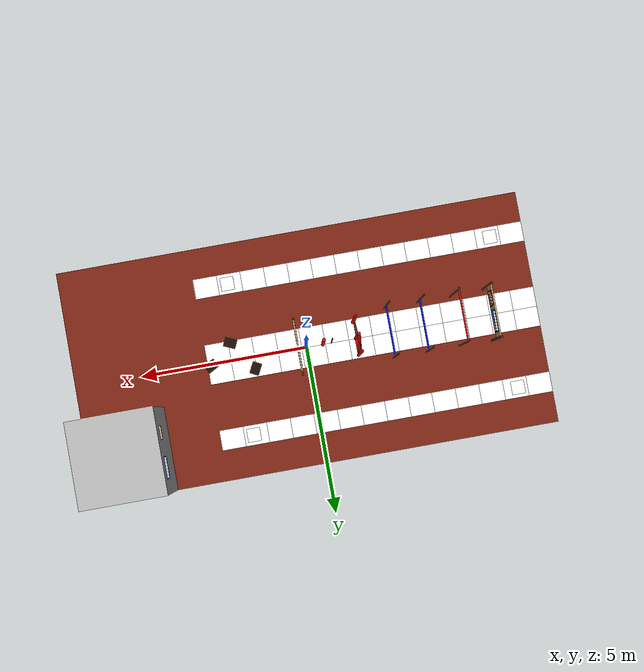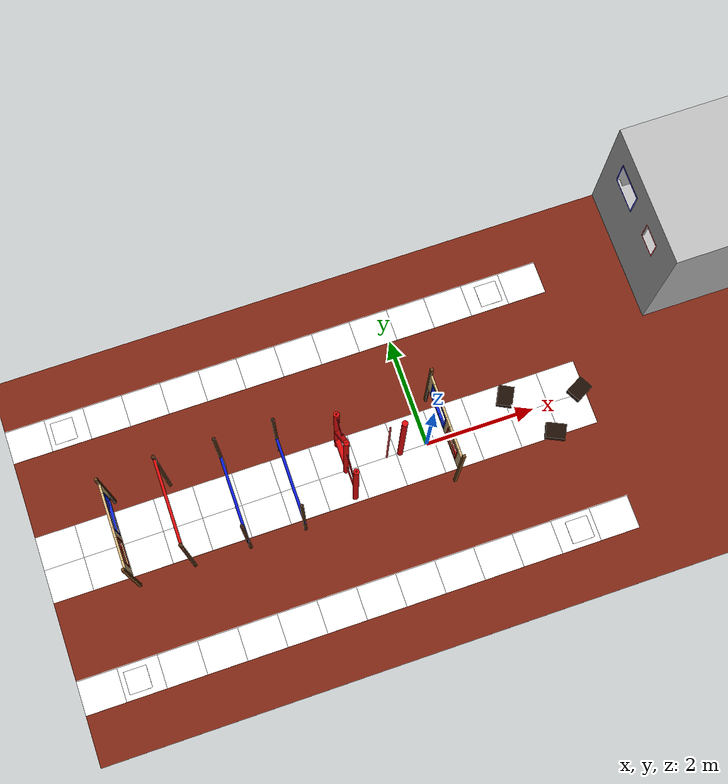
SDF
<sdf version="1.9">
 <world name="imav_world">
  <physics name="1ms" type="ignore">
   <max_step_size>0.001</max_step_size>
   <real_time_factor>1.0</real_time_factor>
  </physics>
  <plugin filename="gz-sim-physics-system" name="gz::sim::systems::Physics"/>
  <plugin filename="gz-sim-sensors-system" name="gz::sim::systems::Sensors">
   <render_engine>ogre2</render_engine>
  </plugin>
  <plugin filename="gz-sim-user-commands-system" name="gz::sim::systems::UserCommands"/>
  <plugin filename="gz-sim-scene-broadcaster-system" name="gz::sim::systems::SceneBroadcaster"/>
  <plugin filename="gz-sim-imu-system" name="gz::sim::systems::Imu"/>
  <plugin filename="gz-sim-pose-publisher-system" name="gz::sim::systems::PosePublisher">
   <publish_model_pose>true</publish_model_pose>
   <publish_nested_model_pose>false</publish_nested_model_pose>
   <update_frequency>30</update_frequency>
  </plugin>
  <light type="point" name="ceiling_light_1">
   <pose>-5 -5 11.5 0 0 0</pose>
   <diffuse>1.0 1.0 1.0 1</diffuse>
   <specular>0.3 0.3 0.3 1</specular>
   <attenuation>
    <range>30</range>
    <constant>0.5</constant>
    <linear>0.02</linear>
    <quadratic>0.003</quadratic>
   </attenuation>
  </light>
  <light type="point" name="ceiling_light_2">
   <pose>-5 5 11.5 0 0 0</pose>
   <diffuse>1.0 1.0 1.0 1</diffuse>
   <specular>0.3 0.3 0.3 1</specular>
   <attenuation>
    <range>30</range>
    <constant>0.5</constant>
    <linear>0.02</linear>
    <quadratic>0.003</quadratic>
   </attenuation>
  </light>
  <light type="point" name="ceiling_light_3">
   <pose>5 -5 11.5 0 0 0</pose>
   <diffuse>1.0 1.0 1.0 1</diffuse>
   <specular>0.3 0.3 0.3 1</specular>
   <attenuation>
    <range>30</range>
    <constant>0.5</constant>
    <linear>0.02</linear>
    <quadratic>0.003</quadratic>
   </attenuation>
  </light>
  <light type="point" name="ceiling_light_4">
   <pose>5 5 11.5 0 0 0</pose>
   <diffuse>1.0 1.0 1.0 1</diffuse>
   <specular>0.3 0.3 0.3 1</specular>
   <attenuation>
    <range>30</range>
    <constant>0.5</constant>
    <linear>0.02</linear>
    <quadratic>0.003</quadratic>
   </attenuation>
  </light>
  <include><uri>model://imav</uri><name>imav</name></include>
  <model name="front_camera">
   <static>false</static>
   <pose relative_to="iris::iris_with_standoffs::base_link">0.18 0 -0.02 0 0 0</pose>
   <link name="link">
    <inertial>
     <mass>0.07</mass>
     <inertia><ixx>1e-5</ixx><ixy>0</ixy><ixz>0</ixz><iyy>1e-5</iyy><iyz>0</iyz><izz>1e-5</izz></inertia>
    </inertial>
    <visual name="visual">
     <geometry><box><size>0.025 0.09 0.025</size></box></geometry>
     <material><ambient>0.5 0.5 0.5 1</ambient><diffuse>0.6 0.6 0.6 1</diffuse></material>
    </visual>
    <sensor name="front_rgbd" type="rgbd_camera">
     <always_on>true</always_on>
     <update_rate>15</update_rate>
     <topic>/front_camera</topic>
     <camera>
      <horizontal_fov>1.2043</horizontal_fov>
      <image><width>640</width><height>480</height><format>R8G8B8</format></image>
      <clip><near>0.1</near><far>10.0</far></clip>
      <depth_camera><clip><near>0.1</near><far>10.0</far></clip></depth_camera>
     </camera>
    </sensor>
   </link>
  </model>
  <joint name="front_camera_joint" type="fixed">
   <parent>iris::iris_with_standoffs::base_link</parent>
   <child>front_camera::link</child>
  </joint>
  <model name="down_camera">
   <static>false</static>
   <pose relative_to="iris::iris_with_standoffs::base_link">0 0 -0.04 0 1.5708 0</pose>
   <link name="link">
    <inertial>
     <mass>0.03</mass>
     <inertia><ixx>1e-6</ixx><ixy>0</ixy><ixz>0</ixz><iyy>1e-6</iyy><iyz>0</iyz><izz>1e-6</izz></inertia>
    </inertial>
    <visual name="visual">
     <geometry><box><size>0.02 0.02 0.015</size></box></geometry>
     <material><ambient>0.2 0.2 0.2 1</ambient><diffuse>0.3 0.3 0.3 1</diffuse></material>
    </visual>
    <sensor name="down_rgb" type="camera">
     <always_on>true</always_on>
     <update_rate>15</update_rate>
     <topic>/down_camera</topic>
     <camera>
      <horizontal_fov>1.5009</horizontal_fov>
      <image><width>640</width><height>480</height><format>R8G8B8</format></image>
      <clip><near>0.1</near><far>50.0</far></clip>
     </camera>
    </sensor>
   </link>
  </model>
  <joint name="down_camera_joint" type="fixed">
   <parent>iris::iris_with_standoffs::base_link</parent>
   <child>down_camera::link</child>
  </joint>
  <model name="lidar_rangefinder">
   <static>false</static>
   <pose relative_to="iris::iris_with_standoffs::base_link">0 0 -0.05 0 1.5708 0</pose>
   <link name="link">
    <inertial>
     <mass>0.03</mass>
     <inertia><ixx>1e-6</ixx><ixy>0</ixy><ixz>0</ixz><iyy>1e-6</iyy><iyz>0</iyz><izz>1e-6</izz></inertia>
    </inertial>
    <sensor name="lidar_rangefinder" type="gpu_lidar">
     <always_on>true</always_on>
     <update_rate>50</update_rate>
     <topic>/lidar/range</topic>
     <ray>
      <scan>
       <horizontal>
        <samples>1</samples>
        <resolution>1</resolution>
        <min_angle>0</min_angle>
        <max_angle>0</max_angle>
       </horizontal>
      </scan>
      <range><min>0.1</min><max>40.0</max><resolution>0.01</resolution></range>
     </ray>
    </sensor>
   </link>
  </model>
  <joint name="lidar_joint" type="fixed">
   <parent>iris::iris_with_standoffs::base_link</parent>
   <child>lidar_rangefinder::link</child>
  </joint>
 </world>
</sdf>

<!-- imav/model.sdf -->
<sdf version="1.9">
  <model name="imav">
    <static>true</static>

    <!-- Mesh visual (rulebook scenery). Collision is the floor box + overlays so
         missing all.stl cannot leave the arena without physics. -->
    <link name="base_link">
      <collision name="floor_collision">
        <pose>0 0 -0.05 0 0 0</pose>
        <geometry>
          <box>
            <size>14 7 0.1</size>
          </box>
        </geometry>
      </collision>
      <visual name="visual">
        <geometry>
          <mesh>
            <uri>model://imav/meshes/all.dae</uri>
            <scale>1 1 1</scale>
          </mesh>
        </geometry>
      </visual>
    </link>

    <link name="floor_red">
      <pose>0 0 -0.002 0 0 0</pose>
      <visual name="visual">
        <geometry><box><size>14 7 0.004</size></box></geometry>
          <material>
            <ambient>0.7 0.08 0.05 1</ambient>
            <diffuse>0.7 0.08 0.05 1</diffuse>
            <specular>0.15 0.15 0.15 1</specular>
          </material>
      </visual>
    </link>
    <!-- Fig.8 wallpaper: tiled quads (not one stretched 10 m box). -->
    <link name="wallpaper">

      <visual name="wp_c0_0">
        <pose>-6.642857 0.30 0.004 0 0 0</pose>
        <geometry><box><size>0.714286 0.6 0.006</size></box></geometry>
          <material>
            <ambient>1 1 1 1</ambient>
            <diffuse>1 1 1 1</diffuse>
            <pbr>
              <metal>
                <albedo_map>model://imav/meshes/wallpaper_image.jpg</albedo_map>
              </metal>
            </pbr>
          </material>
      </visual>

      <visual name="wp_c0_1">
        <pose>-5.928571 0.30 0.004 0 0 0</pose>
        <geometry><box><size>0.714286 0.6 0.006</size></box></geometry>
          <material>
            <ambient>1 1 1 1</ambient>
            <diffuse>1 1 1 1</diffuse>
            <pbr>
              <metal>
                <albedo_map>model://imav/meshes/wallpaper_image.jpg</albedo_map>
              </metal>
            </pbr>
          </material>
      </visual>

      <visual name="wp_c0_2">
        <pose>-5.214286 0.30 0.004 0 0 0</pose>
        <geometry><box><size>0.714286 0.6 0.006</size></box></geometry>
          <material>
            <ambient>1 1 1 1</ambient>
            <diffuse>1 1 1 1</diffuse>
            <pbr>
              <metal>
                <albedo_map>model://imav/meshes/wallpaper_image.jpg</albedo_map>
              </metal>
            </pbr>
          </material>
      </visual>

      <visual name="wp_c0_3">
        <pose>-4.500000 0.30 0.004 0 0 0</pose>
        <geometry><box><size>0.714286 0.6 0.006</size></box></geometry>
          <material>
            <ambient>1 1 1 1</ambient>
            <diffuse>1 1 1 1</diffuse>
            <pbr>
              <metal>
                <albedo_map>model://imav/meshes/wallpaper_image.jpg</albedo_map>
              </metal>
            </pbr>
          </material>
      </visual>

      <visual name="wp_c0_4">
        <pose>-3.785714 0.30 0.004 0 0 0</pose>
        <geometry><box><size>0.714286 0.6 0.006</size></box></geometry>
          <material>
            <ambient>1 1 1 1</ambient>
            <diffuse>1 1 1 1</diffuse>
            <pbr>
              <metal>
                <albedo_map>model://imav/meshes/wallpaper_image.jpg</albedo_map>
              </metal>
            </pbr>
          </material>
      </visual>

      <visual name="wp_c0_5">
        <pose>-3.071429 0.30 0.004 0 0 0</pose>
        <geometry><box><size>0.714286 0.6 0.006</size></box></geometry>
          <material>
            <ambient>1 1 1 1</ambient>
            <diffuse>1 1 1 1</diffuse>
            <pbr>
              <metal>
                <albedo_map>model://imav/meshes/wallpaper_image.jpg</albedo_map>
              </metal>
            </pbr>
          </material>
      </visual>

      <visual name="wp_c0_6">
        <pose>-2.357143 0.30 0.004 0 0 0</pose>
        <geometry><box><size>0.714286 0.6 0.006</size></box></geometry>
          <material>
            <ambient>1 1 1 1</ambient>
            <diffuse>1 1 1 1</diffuse>
            <pbr>
              <metal>
                <albedo_map>model://imav/meshes/wallpaper_image.jpg</albedo_map>
              </metal>
            </pbr>
          </material>
      </visual>

      <visual name="wp_c0_7">
        <pose>-1.642857 0.30 0.004 0 0 0</pose>
        <geometry><box><size>0.714286 0.6 0.006</size></box></geometry>
          <material>
            <ambient>1 1 1 1</ambient>
            <diffuse>1 1 1 1</diffuse>
            <pbr>
              <metal>
                <albedo_map>model://imav/meshes/wallpaper_image.jpg</albedo_map>
              </metal>
            </pbr>
          </material>
      </visual>

      <visual name="wp_c0_8">
        <pose>-0.928571 0.30 0.004 0 0 0</pose>
        <geometry><box><size>0.714286 0.6 0.006</size></box></geometry>
          <material>
            <ambient>1 1 1 1</ambient>
            <diffuse>1 1 1 1</diffuse>
            <pbr>
              <metal>
                <albedo_map>model://imav/meshes/wallpaper_image.jpg</albedo_map>
              </metal>
            </pbr>
          </material>
      </visual>

      <visual name="wp_c0_9">
        <pose>-0.214286 0.30 0.004 0 0 0</pose>
        <geometry><box><size>0.714286 0.6 0.006</size></box></geometry>
          <material>
            <ambient>1 1 1 1</ambient>
            <diffuse>1 1 1 1</diffuse>
            <pbr>
              <metal>
                <albedo_map>model://imav/meshes/wallpaper_image.jpg</albedo_map>
              </metal>
            </pbr>
          </material>
      </visual>

      <visual name="wp_c0_10">
        <pose>0.500000 0.30 0.004 0 0 0</pose>
        <geometry><box><size>0.714286 0.6 0.006</size></box></geometry>
          <material>
            <ambient>1 1 1 1</ambient>
            <diffuse>1 1 1 1</diffuse>
            <pbr>
              <metal>
                <albedo_map>model://imav/meshes/wallpaper_image.jpg</albedo_map>
              </metal>
            </pbr>
          </material>
      </visual>

      <visual name="wp_c0_11">
        <pose>1.214286 0.30 0.004 0 0 0</pose>
        <geometry><box><size>0.714286 0.6 0.006</size></box></geometry>
          <material>
            <ambient>1 1 1 1</ambient>
            <diffuse>1 1 1 1</diffuse>
            <pbr>
              <metal>
                <albedo_map>model://imav/meshes/wallpaper_image.jpg</albedo_map>
              </metal>
            </pbr>
          </material>
      </visual>

      <visual name="wp_c0_12">
        <pose>1.928571 0.30 0.004 0 0 0</pose>
        <geometry><box><size>0.714286 0.6 0.006</size></box></geometry>
          <material>
            <ambient>1 1 1 1</ambient>
            <diffuse>1 1 1 1</diffuse>
            <pbr>
              <metal>
                <albedo_map>model://imav/meshes/wallpaper_image.jpg</albedo_map>
              </metal>
            </pbr>
          </material>
      </visual>

      <visual name="wp_c0_13">
        <pose>2.642857 0.30 0.004 0 0 0</pose>
        <geometry><box><size>0.714286 0.6 0.006</size></box></geometry>
          <material>
            <ambient>1 1 1 1</ambient>
            <diffuse>1 1 1 1</diffuse>
            <pbr>
              <metal>
                <albedo_map>model://imav/meshes/wallpaper_image.jpg</albedo_map>
              </metal>
            </pbr>
          </material>
      </visual>

      <visual name="wp_c1_0">
        <pose>-6.642857 -0.30 0.004 0 0 0</pose>
        <geometry><box><size>0.714286 0.6 0.006</size></box></geometry>
          <material>
            <ambient>1 1 1 1</ambient>
            <diffuse>1 1 1 1</diffuse>
            <pbr>
              <metal>
                <albedo_map>model://imav/meshes/wallpaper_image.jpg</albedo_map>
              </metal>
            </pbr>
          </material>
      </visual>

      <visual name="wp_c1_1">
        <pose>-5.928571 -0.30 0.004 0 0 0</pose>
        <geometry><box><size>0.714286 0.6 0.006</size></box></geometry>
          <material>
            <ambient>1 1 1 1</ambient>
            <diffuse>1 1 1 1</diffuse>
            <pbr>
              <metal>
                <albedo_map>model://imav/meshes/wallpaper_image.jpg</albedo_map>
              </metal>
            </pbr>
          </material>
      </visual>

      <visual name="wp_c1_2">
        <pose>-5.214286 -0.30 0.004 0 0 0</pose>
        <geometry><box><size>0.714286 0.6 0.006</size></box></geometry>
          <material>
            <ambient>1 1 1 1</ambient>
            <diffuse>1 1 1 1</diffuse>
            <pbr>
              <metal>
                <albedo_map>model://imav/meshes/wallpaper_image.jpg</albedo_map>
              </metal>
            </pbr>
          </material>
      </visual>

      <visual name="wp_c1_3">
        <pose>-4.500000 -0.30 0.004 0 0 0</pose>
        <geometry><box><size>0.714286 0.6 0.006</size></box></geometry>
          <material>
            <ambient>1 1 1 1</ambient>
            <diffuse>1 1 1 1</diffuse>
            <pbr>
              <metal>
                <albedo_map>model://imav/meshes/wallpaper_image.jpg</albedo_map>
              </metal>
            </pbr>
          </material>
      </visual>

      <visual name="wp_c1_4">
        <pose>-3.785714 -0.30 0.004 0 0 0</pose>
        <geometry><box><size>0.714286 0.6 0.006</size></box></geometry>
          <material>
            <ambient>1 1 1 1</ambient>
            <diffuse>1 1 1 1</diffuse>
            <pbr>
              <metal>
                <albedo_map>model://imav/meshes/wallpaper_image.jpg</albedo_map>
              </metal>
            </pbr>
          </material>
      </visual>

      <visual name="wp_c1_5">
        <pose>-3.071429 -0.30 0.004 0 0 0</pose>
        <geometry><box><size>0.714286 0.6 0.006</size></box></geometry>
          <material>
            <ambient>1 1 1 1</ambient>
            <diffuse>1 1 1 1</diffuse>
            <pbr>
              <metal>
                <albedo_map>model://imav/meshes/wallpaper_image.jpg</albedo_map>
              </metal>
            </pbr>
          </material>
      </visual>

      <visual name="wp_c1_6">
        <pose>-2.357143 -0.30 0.004 0 0 0</pose>
        <geometry><box><size>0.714286 0.6 0.006</size></box></geometry>
          <material>
            <ambient>1 1 1 1</ambient>
            <diffuse>1 1 1 1</diffuse>
            <pbr>
              <metal>
                <albedo_map>model://imav/meshes/wallpaper_image.jpg</albedo_map>
              </metal>
            </pbr>
          </material>
      </visual>

      <visual name="wp_c1_7">
        <pose>-1.642857 -0.30 0.004 0 0 0</pose>
        <geometry><box><size>0.714286 0.6 0.006</size></box></geometry>
          <material>
            <ambient>1 1 1 1</ambient>
            <diffuse>1 1 1 1</diffuse>
            <pbr>
              <metal>
                <albedo_map>model://imav/meshes/wallpaper_image.jpg</albedo_map>
              </metal>
            </pbr>
          </material>
      </visual>

      <visual name="wp_c1_8">
        <pose>-0.928571 -0.30 0.004 0 0 0</pose>
        <geometry><box><size>0.714286 0.6 0.006</size></box></geometry>
          <material>
            <ambient>1 1 1 1</ambient>
            <diffuse>1 1 1 1</diffuse>
            <pbr>
              <metal>
                <albedo_map>model://imav/meshes/wallpaper_image.jpg</albedo_map>
              </metal>
            </pbr>
          </material>
      </visual>

      <visual name="wp_c1_9">
        <pose>-0.214286 -0.30 0.004 0 0 0</pose>
        <geometry><box><size>0.714286 0.6 0.006</size></box></geometry>
          <material>
            <ambient>1 1 1 1</ambient>
            <diffuse>1 1 1 1</diffuse>
            <pbr>
              <metal>
                <albedo_map>model://imav/meshes/wallpaper_image.jpg</albedo_map>
              </metal>
            </pbr>
          </material>
      </visual>

      <visual name="wp_c1_10">
        <pose>0.500000 -0.30 0.004 0 0 0</pose>
        <geometry><box><size>0.714286 0.6 0.006</size></box></geometry>
          <material>
            <ambient>1 1 1 1</ambient>
            <diffuse>1 1 1 1</diffuse>
            <pbr>
              <metal>
                <albedo_map>model://imav/meshes/wallpaper_image.jpg</albedo_map>
              </metal>
            </pbr>
          </material>
      </visual>

      <visual name="wp_c1_11">
        <pose>1.214286 -0.30 0.004 0 0 0</pose>
        <geometry><box><size>0.714286 0.6 0.006</size></box></geometry>
          <material>
            <ambient>1 1 1 1</ambient>
            <diffuse>1 1 1 1</diffuse>
            <pbr>
              <metal>
                <albedo_map>model://imav/meshes/wallpaper_image.jpg</albedo_map>
              </metal>
            </pbr>
          </material>
      </visual>

      <visual name="wp_c1_12">
        <pose>1.928571 -0.30 0.004 0 0 0</pose>
        <geometry><box><size>0.714286 0.6 0.006</size></box></geometry>
          <material>
            <ambient>1 1 1 1</ambient>
            <diffuse>1 1 1 1</diffuse>
            <pbr>
              <metal>
                <albedo_map>model://imav/meshes/wallpaper_image.jpg</albedo_map>
              </metal>
            </pbr>
          </material>
      </visual>

      <visual name="wp_c1_13">
        <pose>2.642857 -0.30 0.004 0 0 0</pose>
        <geometry><box><size>0.714286 0.6 0.006</size></box></geometry>
          <material>
            <ambient>1 1 1 1</ambient>
            <diffuse>1 1 1 1</diffuse>
            <pbr>
              <metal>
                <albedo_map>model://imav/meshes/wallpaper_image.jpg</albedo_map>
              </metal>
            </pbr>
          </material>
      </visual>

      <visual name="wp_l_0">
        <pose>-6.642857 2.29 0.004 0 0 0</pose>
        <geometry><box><size>0.714286 0.6 0.006</size></box></geometry>
          <material>
            <ambient>1 1 1 1</ambient>
            <diffuse>1 1 1 1</diffuse>
            <pbr>
              <metal>
                <albedo_map>model://imav/meshes/wallpaper_image.jpg</albedo_map>
              </metal>
            </pbr>
          </material>
      </visual>

      <visual name="wp_l_1">
        <pose>-5.928571 2.29 0.004 0 0 0</pose>
        <geometry><box><size>0.714286 0.6 0.006</size></box></geometry>
          <material>
            <ambient>1 1 1 1</ambient>
            <diffuse>1 1 1 1</diffuse>
            <pbr>
              <metal>
                <albedo_map>model://imav/meshes/wallpaper_image.jpg</albedo_map>
              </metal>
            </pbr>
          </material>
      </visual>

      <visual name="wp_l_2">
        <pose>-5.214286 2.29 0.004 0 0 0</pose>
        <geometry><box><size>0.714286 0.6 0.006</size></box></geometry>
          <material>
            <ambient>1 1 1 1</ambient>
            <diffuse>1 1 1 1</diffuse>
            <pbr>
              <metal>
                <albedo_map>model://imav/meshes/wallpaper_image.jpg</albedo_map>
              </metal>
            </pbr>
          </material>
      </visual>

      <visual name="wp_l_3">
        <pose>-4.500000 2.29 0.004 0 0 0</pose>
        <geometry><box><size>0.714286 0.6 0.006</size></box></geometry>
          <material>
            <ambient>1 1 1 1</ambient>
            <diffuse>1 1 1 1</diffuse>
            <pbr>
              <metal>
                <albedo_map>model://imav/meshes/wallpaper_image.jpg</albedo_map>
              </metal>
            </pbr>
          </material>
      </visual>

      <visual name="wp_l_4">
        <pose>-3.785714 2.29 0.004 0 0 0</pose>
        <geometry><box><size>0.714286 0.6 0.006</size></box></geometry>
          <material>
            <ambient>1 1 1 1</ambient>
            <diffuse>1 1 1 1</diffuse>
            <pbr>
              <metal>
                <albedo_map>model://imav/meshes/wallpaper_image.jpg</albedo_map>
              </metal>
            </pbr>
          </material>
      </visual>

      <visual name="wp_l_5">
        <pose>-3.071429 2.29 0.004 0 0 0</pose>
        <geometry><box><size>0.714286 0.6 0.006</size></box></geometry>
          <material>
            <ambient>1 1 1 1</ambient>
            <diffuse>1 1 1 1</diffuse>
            <pbr>
              <metal>
                <albedo_map>model://imav/meshes/wallpaper_image.jpg</albedo_map>
              </metal>
            </pbr>
          </material>
      </visual>

      <visual name="wp_l_6">
        <pose>-2.357143 2.29 0.004 0 0 0</pose>
        <geometry><box><size>0.714286 0.6 0.006</size></box></geometry>
          <material>
            <ambient>1 1 1 1</ambient>
            <diffuse>1 1 1 1</diffuse>
            <pbr>
              <metal>
                <albedo_map>model://imav/meshes/wallpaper_image.jpg</albedo_map>
              </metal>
            </pbr>
          </material>
      </visual>

      <visual name="wp_l_7">
        <pose>-1.642857 2.29 0.004 0 0 0</pose>
        <geometry><box><size>0.714286 0.6 0.006</size></box></geometry>
          <material>
            <ambient>1 1 1 1</ambient>
            <diffuse>1 1 1 1</diffuse>
            <pbr>
              <metal>
                <albedo_map>model://imav/meshes/wallpaper_image.jpg</albedo_map>
              </metal>
            </pbr>
          </material>
      </visual>

      <visual name="wp_l_8">
        <pose>-0.928571 2.29 0.004 0 0 0</pose>
        <geometry><box><size>0.714286 0.6 0.006</size></box></geometry>
          <material>
            <ambient>1 1 1 1</ambient>
            <diffuse>1 1 1 1</diffuse>
            <pbr>
              <metal>
                <albedo_map>model://imav/meshes/wallpaper_image.jpg</albedo_map>
              </metal>
            </pbr>
          </material>
      </visual>

      <visual name="wp_l_9">
        <pose>-0.214286 2.29 0.004 0 0 0</pose>
        <geometry><box><size>0.714286 0.6 0.006</size></box></geometry>
          <material>
            <ambient>1 1 1 1</ambient>
            <diffuse>1 1 1 1</diffuse>
            <pbr>
              <metal>
                <albedo_map>model://imav/meshes/wallpaper_image.jpg</albedo_map>
              </metal>
            </pbr>
          </material>
      </visual>

      <visual name="wp_l_10">
        <pose>0.500000 2.29 0.004 0 0 0</pose>
        <geometry><box><size>0.714286 0.6 0.006</size></box></geometry>
          <material>
            <ambient>1 1 1 1</ambient>
            <diffuse>1 1 1 1</diffuse>
            <pbr>
              <metal>
                <albedo_map>model://imav/meshes/wallpaper_image.jpg</albedo_map>
              </metal>
            </pbr>
          </material>
      </visual>

      <visual name="wp_l_11">
        <pose>1.214286 2.29 0.004 0 0 0</pose>
        <geometry><box><size>0.714286 0.6 0.006</size></box></geometry>
          <material>
            <ambient>1 1 1 1</ambient>
            <diffuse>1 1 1 1</diffuse>
            <pbr>
              <metal>
                <albedo_map>model://imav/meshes/wallpaper_image.jpg</albedo_map>
              </metal>
            </pbr>
          </material>
      </visual>

      <visual name="wp_l_12">
        <pose>1.928571 2.29 0.004 0 0 0</pose>
        <geometry><box><size>0.714286 0.6 0.006</size></box></geometry>
          <material>
            <ambient>1 1 1 1</ambient>
            <diffuse>1 1 1 1</diffuse>
            <pbr>
              <metal>
                <albedo_map>model://imav/meshes/wallpaper_image.jpg</albedo_map>
              </metal>
            </pbr>
          </material>
      </visual>

      <visual name="wp_l_13">
        <pose>2.642857 2.29 0.004 0 0 0</pose>
        <geometry><box><size>0.714286 0.6 0.006</size></box></geometry>
          <material>
            <ambient>1 1 1 1</ambient>
            <diffuse>1 1 1 1</diffuse>
            <pbr>
              <metal>
                <albedo_map>model://imav/meshes/wallpaper_image.jpg</albedo_map>
              </metal>
            </pbr>
          </material>
      </visual>

      <visual name="wp_r_0">
        <pose>-6.642857 -2.30 0.004 0 0 0</pose>
        <geometry><box><size>0.714286 0.6 0.006</size></box></geometry>
          <material>
            <ambient>1 1 1 1</ambient>
            <diffuse>1 1 1 1</diffuse>
            <pbr>
              <metal>
                <albedo_map>model://imav/meshes/wallpaper_image.jpg</albedo_map>
              </metal>
            </pbr>
          </material>
      </visual>

      <visual name="wp_r_1">
        <pose>-5.928571 -2.30 0.004 0 0 0</pose>
        <geometry><box><size>0.714286 0.6 0.006</size></box></geometry>
          <material>
            <ambient>1 1 1 1</ambient>
            <diffuse>1 1 1 1</diffuse>
            <pbr>
              <metal>
                <albedo_map>model://imav/meshes/wallpaper_image.jpg</albedo_map>
              </metal>
            </pbr>
          </material>
      </visual>

      <visual name="wp_r_2">
        <pose>-5.214286 -2.30 0.004 0 0 0</pose>
        <geometry><box><size>0.714286 0.6 0.006</size></box></geometry>
          <material>
            <ambient>1 1 1 1</ambient>
            <diffuse>1 1 1 1</diffuse>
            <pbr>
              <metal>
                <albedo_map>model://imav/meshes/wallpaper_image.jpg</albedo_map>
              </metal>
            </pbr>
          </material>
      </visual>

      <visual name="wp_r_3">
        <pose>-4.500000 -2.30 0.004 0 0 0</pose>
        <geometry><box><size>0.714286 0.6 0.006</size></box></geometry>
          <material>
            <ambient>1 1 1 1</ambient>
            <diffuse>1 1 1 1</diffuse>
            <pbr>
              <metal>
                <albedo_map>model://imav/meshes/wallpaper_image.jpg</albedo_map>
              </metal>
            </pbr>
          </material>
      </visual>

      <visual name="wp_r_4">
        <pose>-3.785714 -2.30 0.004 0 0 0</pose>
        <geometry><box><size>0.714286 0.6 0.006</size></box></geometry>
          <material>
            <ambient>1 1 1 1</ambient>
            <diffuse>1 1 1 1</diffuse>
            <pbr>
              <metal>
                <albedo_map>model://imav/meshes/wallpaper_image.jpg</albedo_map>
              </metal>
            </pbr>
          </material>
      </visual>

      <visual name="wp_r_5">
        <pose>-3.071429 -2.30 0.004 0 0 0</pose>
        <geometry><box><size>0.714286 0.6 0.006</size></box></geometry>
          <material>
            <ambient>1 1 1 1</ambient>
            <diffuse>1 1 1 1</diffuse>
            <pbr>
              <metal>
                <albedo_map>model://imav/meshes/wallpaper_image.jpg</albedo_map>
              </metal>
            </pbr>
          </material>
      </visual>

      <visual name="wp_r_6">
        <pose>-2.357143 -2.30 0.004 0 0 0</pose>
        <geometry><box><size>0.714286 0.6 0.006</size></box></geometry>
          <material>
            <ambient>1 1 1 1</ambient>
            <diffuse>1 1 1 1</diffuse>
            <pbr>
              <metal>
                <albedo_map>model://imav/meshes/wallpaper_image.jpg</albedo_map>
              </metal>
            </pbr>
          </material>
      </visual>

      <visual name="wp_r_7">
        <pose>-1.642857 -2.30 0.004 0 0 0</pose>
        <geometry><box><size>0.714286 0.6 0.006</size></box></geometry>
          <material>
            <ambient>1 1 1 1</ambient>
            <diffuse>1 1 1 1</diffuse>
            <pbr>
              <metal>
                <albedo_map>model://imav/meshes/wallpaper_image.jpg</albedo_map>
              </metal>
            </pbr>
          </material>
      </visual>

      <visual name="wp_r_8">
        <pose>-0.928571 -2.30 0.004 0 0 0</pose>
        <geometry><box><size>0.714286 0.6 0.006</size></box></geometry>
          <material>
            <ambient>1 1 1 1</ambient>
            <diffuse>1 1 1 1</diffuse>
            <pbr>
              <metal>
                <albedo_map>model://imav/meshes/wallpaper_image.jpg</albedo_map>
              </metal>
            </pbr>
          </material>
      </visual>

      <visual name="wp_r_9">
        <pose>-0.214286 -2.30 0.004 0 0 0</pose>
        <geometry><box><size>0.714286 0.6 0.006</size></box></geometry>
          <material>
            <ambient>1 1 1 1</ambient>
            <diffuse>1 1 1 1</diffuse>
            <pbr>
              <metal>
                <albedo_map>model://imav/meshes/wallpaper_image.jpg</albedo_map>
              </metal>
            </pbr>
          </material>
      </visual>

      <visual name="wp_r_10">
        <pose>0.500000 -2.30 0.004 0 0 0</pose>
        <geometry><box><size>0.714286 0.6 0.006</size></box></geometry>
          <material>
            <ambient>1 1 1 1</ambient>
            <diffuse>1 1 1 1</diffuse>
            <pbr>
              <metal>
                <albedo_map>model://imav/meshes/wallpaper_image.jpg</albedo_map>
              </metal>
            </pbr>
          </material>
      </visual>

      <visual name="wp_r_11">
        <pose>1.214286 -2.30 0.004 0 0 0</pose>
        <geometry><box><size>0.714286 0.6 0.006</size></box></geometry>
          <material>
            <ambient>1 1 1 1</ambient>
            <diffuse>1 1 1 1</diffuse>
            <pbr>
              <metal>
                <albedo_map>model://imav/meshes/wallpaper_image.jpg</albedo_map>
              </metal>
            </pbr>
          </material>
      </visual>

      <visual name="wp_r_12">
        <pose>1.928571 -2.30 0.004 0 0 0</pose>
        <geometry><box><size>0.714286 0.6 0.006</size></box></geometry>
          <material>
            <ambient>1 1 1 1</ambient>
            <diffuse>1 1 1 1</diffuse>
            <pbr>
              <metal>
                <albedo_map>model://imav/meshes/wallpaper_image.jpg</albedo_map>
              </metal>
            </pbr>
          </material>
      </visual>

      <visual name="wp_r_13">
        <pose>2.642857 -2.30 0.004 0 0 0</pose>
        <geometry><box><size>0.714286 0.6 0.006</size></box></geometry>
          <material>
            <ambient>1 1 1 1</ambient>
            <diffuse>1 1 1 1</diffuse>
            <pbr>
              <metal>
                <albedo_map>model://imav/meshes/wallpaper_image.jpg</albedo_map>
              </metal>
            </pbr>
          </material>
      </visual>
    </link>

    <link name="sand_square">
      <pose>5.75 2.25 0.004 0 0 0</pose>
      <visual name="visual">
        <geometry><box><size>2.5 2.5 0.006</size></box></geometry>
          <material>
            <ambient>1 1 1 1</ambient>
            <diffuse>1 1 1 1</diffuse>
            <pbr>
              <metal>
                <albedo_map>model://imav/meshes/sand_image.jpg</albedo_map>
              </metal>
            </pbr>
          </material>
      </visual>
    </link>
    <link name="aruco_id0">
      <pose>-6.0 2.29 0.012 0 0 0</pose>
      <collision name="collision">
        <geometry><box><size>0.4 0.4 0.004</size></box></geometry>
      </collision>
      <visual name="visual">
        <geometry><box><size>0.4 0.4 0.004</size></box></geometry>
          <material>
            <ambient>1 1 1 1</ambient>
            <diffuse>1 1 1 1</diffuse>
            <pbr>
              <metal>
                <albedo_map>model://imav/meshes/aruco_0.png</albedo_map>
              </metal>
            </pbr>
          </material>
      </visual>
    </link>
    <link name="aruco_id1">
      <pose>-6.0 -2.3 0.012 0 0 0</pose>
      <collision name="collision">
        <geometry><box><size>0.4 0.4 0.004</size></box></geometry>
      </collision>
      <visual name="visual">
        <geometry><box><size>0.4 0.4 0.004</size></box></geometry>
          <material>
            <ambient>1 1 1 1</ambient>
            <diffuse>1 1 1 1</diffuse>
            <pbr>
              <metal>
                <albedo_map>model://imav/meshes/aruco_1.png</albedo_map>
              </metal>
            </pbr>
          </material>
      </visual>
    </link>
    <link name="aruco_id2">
      <pose>2.0 2.29 0.012 0 0 0</pose>
      <collision name="collision">
        <geometry><box><size>0.4 0.4 0.004</size></box></geometry>
      </collision>
      <visual name="visual">
        <geometry><box><size>0.4 0.4 0.004</size></box></geometry>
          <material>
            <ambient>1 1 1 1</ambient>
            <diffuse>1 1 1 1</diffuse>
            <pbr>
              <metal>
                <albedo_map>model://imav/meshes/aruco_2.png</albedo_map>
              </metal>
            </pbr>
          </material>
      </visual>
    </link>
    <link name="aruco_id3">
      <pose>2.0 -2.3 0.012 0 0 0</pose>
      <collision name="collision">
        <geometry><box><size>0.4 0.4 0.004</size></box></geometry>
      </collision>
      <visual name="visual">
        <geometry><box><size>0.4 0.4 0.004</size></box></geometry>
          <material>
            <ambient>1 1 1 1</ambient>
            <diffuse>1 1 1 1</diffuse>
            <pbr>
              <metal>
                <albedo_map>model://imav/meshes/aruco_3.png</albedo_map>
              </metal>
            </pbr>
          </material>
      </visual>
    </link>
    <!-- Fig.12b: one red bar at step 3 (1980 mm). -->
    <link name="red_post_l">
      <pose> -4.5  0.75 1.050 0 0 0</pose>
      <collision name="collision">
        <geometry><cylinder><radius>0.03</radius><length>2.10</length></cylinder></geometry>
      </collision>
      <visual name="visual">
        <geometry><cylinder><radius>0.03</radius><length>2.10</length></cylinder></geometry>
          <material>
            <ambient>0.28 0.15 0.06 1</ambient>
            <diffuse>0.28 0.15 0.06 1</diffuse>
            <specular>0.15 0.15 0.15 1</specular>
          </material>
      </visual>
    </link>
    <link name="red_post_r">
      <pose> -4.5 -0.75 1.050 0 0 0</pose>
      <collision name="collision">
        <geometry><cylinder><radius>0.03</radius><length>2.10</length></cylinder></geometry>
      </collision>
      <visual name="visual">
        <geometry><cylinder><radius>0.03</radius><length>2.10</length></cylinder></geometry>
          <material>
            <ambient>0.28 0.15 0.06 1</ambient>
            <diffuse>0.28 0.15 0.06 1</diffuse>
            <specular>0.15 0.15 0.15 1</specular>
          </material>
      </visual>
    </link>
    <link name="red_bar">
      <pose> -4.5 0.0 1.980 1.5708 0 0</pose>
      <collision name="collision">
        <geometry><cylinder><radius>0.025</radius><length>1.5</length></cylinder></geometry>
      </collision>
      <visual name="visual">
        <geometry><cylinder><radius>0.025</radius><length>1.5</length></cylinder></geometry>
          <material>
            <ambient>0.85 0.04 0.04 1</ambient>
            <diffuse>0.85 0.04 0.04 1</diffuse>
            <specular>0.15 0.15 0.15 1</specular>
          </material>
      </visual>
    </link>
    <link name="blue1_post_l">
      <pose> -3.5  0.75 1.000 0 0 0</pose>
      <collision name="collision">
        <geometry><cylinder><radius>0.03</radius><length>2.0</length></cylinder></geometry>
      </collision>
      <visual name="visual">
        <geometry><cylinder><radius>0.03</radius><length>2.0</length></cylinder></geometry>
          <material>
            <ambient>0.28 0.15 0.06 1</ambient>
            <diffuse>0.28 0.15 0.06 1</diffuse>
            <specular>0.15 0.15 0.15 1</specular>
          </material>
      </visual>
    </link>
    <link name="blue1_post_r">
      <pose> -3.5 -0.75 1.000 0 0 0</pose>
      <collision name="collision">
        <geometry><cylinder><radius>0.03</radius><length>2.0</length></cylinder></geometry>
      </collision>
      <visual name="visual">
        <geometry><cylinder><radius>0.03</radius><length>2.0</length></cylinder></geometry>
          <material>
            <ambient>0.28 0.15 0.06 1</ambient>
            <diffuse>0.28 0.15 0.06 1</diffuse>
            <specular>0.15 0.15 0.15 1</specular>
          </material>
      </visual>
    </link>
    <link name="blue1_bar">
      <pose> -3.5 0.0 0.800 1.5708 0 0</pose>
      <collision name="collision">
        <geometry><cylinder><radius>0.025</radius><length>1.5</length></cylinder></geometry>
      </collision>
      <visual name="visual">
        <geometry><cylinder><radius>0.025</radius><length>1.5</length></cylinder></geometry>
          <material>
            <ambient>0.04 0.1 0.85 1</ambient>
            <diffuse>0.04 0.1 0.85 1</diffuse>
            <specular>0.15 0.15 0.15 1</specular>
          </material>
      </visual>
    </link>
    <link name="blue2_post_l">
      <pose> -2.5  0.75 1.000 0 0 0</pose>
      <collision name="collision">
        <geometry><cylinder><radius>0.03</radius><length>2.0</length></cylinder></geometry>
      </collision>
      <visual name="visual">
        <geometry><cylinder><radius>0.03</radius><length>2.0</length></cylinder></geometry>
          <material>
            <ambient>0.28 0.15 0.06 1</ambient>
            <diffuse>0.28 0.15 0.06 1</diffuse>
            <specular>0.15 0.15 0.15 1</specular>
          </material>
      </visual>
    </link>
    <link name="blue2_post_r">
      <pose> -2.5 -0.75 1.000 0 0 0</pose>
      <collision name="collision">
        <geometry><cylinder><radius>0.03</radius><length>2.0</length></cylinder></geometry>
      </collision>
      <visual name="visual">
        <geometry><cylinder><radius>0.03</radius><length>2.0</length></cylinder></geometry>
          <material>
            <ambient>0.28 0.15 0.06 1</ambient>
            <diffuse>0.28 0.15 0.06 1</diffuse>
            <specular>0.15 0.15 0.15 1</specular>
          </material>
      </visual>
    </link>
    <link name="blue2_bar">
      <pose> -2.5 0.0 0.800 1.5708 0 0</pose>
      <collision name="collision">
        <geometry><cylinder><radius>0.025</radius><length>1.5</length></cylinder></geometry>
      </collision>
      <visual name="visual">
        <geometry><cylinder><radius>0.025</radius><length>1.5</length></cylinder></geometry>
          <material>
            <ambient>0.04 0.1 0.85 1</ambient>
            <diffuse>0.04 0.1 0.85 1</diffuse>
            <specular>0.15 0.15 0.15 1</specular>
          </material>
      </visual>
    </link>
    <link name="tube_v_l">
      <pose>-1.5  0.50 1.0 0 0 0</pose>
      <collision name="collision">
        <geometry><cylinder><radius>0.05</radius><length>2.0</length></cylinder></geometry>
      </collision>
      <visual name="visual">
        <geometry><cylinder><radius>0.05</radius><length>2.0</length></cylinder></geometry>
          <material>
            <ambient>0.85 0.04 0.04 1</ambient>
            <diffuse>0.85 0.04 0.04 1</diffuse>
            <specular>0.15 0.15 0.15 1</specular>
          </material>
      </visual>
    </link>
    <link name="tube_v_c">
      <pose>-1.5  0.00 1.0 0 0 0</pose>
      <collision name="collision">
        <geometry><cylinder><radius>0.05</radius><length>2.0</length></cylinder></geometry>
      </collision>
      <visual name="visual">
        <geometry><cylinder><radius>0.05</radius><length>2.0</length></cylinder></geometry>
          <material>
            <ambient>0.85 0.04 0.04 1</ambient>
            <diffuse>0.85 0.04 0.04 1</diffuse>
            <specular>0.15 0.15 0.15 1</specular>
          </material>
      </visual>
    </link>
    <link name="tube_v_r">
      <pose>-1.5 -0.50 1.0 0 0 0</pose>
      <collision name="collision">
        <geometry><cylinder><radius>0.05</radius><length>2.0</length></cylinder></geometry>
      </collision>
      <visual name="visual">
        <geometry><cylinder><radius>0.05</radius><length>2.0</length></cylinder></geometry>
          <material>
            <ambient>0.85 0.04 0.04 1</ambient>
            <diffuse>0.85 0.04 0.04 1</diffuse>
            <specular>0.15 0.15 0.15 1</specular>
          </material>
      </visual>
    </link>
    <link name="tube_h">
      <pose>-1.5 0.25 0.461 1.5708 0 0</pose>
      <collision name="collision">
        <geometry><cylinder><radius>0.05</radius><length>0.5</length></cylinder></geometry>
      </collision>
      <visual name="visual">
        <geometry><cylinder><radius>0.05</radius><length>0.5</length></cylinder></geometry>
          <material>
            <ambient>0.85 0.04 0.04 1</ambient>
            <diffuse>0.85 0.04 0.04 1</diffuse>
            <specular>0.15 0.15 0.15 1</specular>
          </material>
      </visual>
    </link>
    <link name="tube_diag">
      <pose>-1.5 0.250 1.461 -2.7073 0 0</pose>
      <collision name="collision">
        <geometry><cylinder><radius>0.05</radius><length>1.1883114069973408</length></cylinder></geometry>
      </collision>
      <visual name="visual">
        <geometry><cylinder><radius>0.05</radius><length>1.1883114069973408</length></cylinder></geometry>
          <material>
            <ambient>0.85 0.04 0.04 1</ambient>
            <diffuse>0.85 0.04 0.04 1</diffuse>
            <specular>0.15 0.15 0.15 1</specular>
          </material>
      </visual>
    </link>
    <link name="tube_rear">
      <pose>-0.5 0.0 1.0 0 0 0</pose>
      <collision name="collision">
        <geometry><cylinder><radius>0.05</radius><length>2.0</length></cylinder></geometry>
      </collision>
      <visual name="visual">
        <geometry><cylinder><radius>0.05</radius><length>2.0</length></cylinder></geometry>
          <material>
            <ambient>0.85 0.04 0.04 1</ambient>
            <diffuse>0.85 0.04 0.04 1</diffuse>
            <specular>0.15 0.15 0.15 1</specular>
          </material>
      </visual>
    </link>
    <!-- Fig.12a OSB panel, inner span 1.5 m, window centers z=1.20. -->
    <link name="gate1">

        <collision name="gate1_post_l_collision">
          <pose>-5.5 0.7750 0.900 0 0 0</pose>
          <geometry><box><size>0.05 0.05 1.80</size></box></geometry>
        </collision>
        <visual name="gate1_post_l">
          <pose>-5.5 0.7750 0.900 0 0 0</pose>
          <geometry><box><size>0.05 0.05 1.80</size></box></geometry>
          <material>
            <ambient>0.45 0.28 0.12 1</ambient>
            <diffuse>0.45 0.28 0.12 1</diffuse>
            <specular>0.15 0.15 0.15 1</specular>
          </material>
        </visual>

        <collision name="gate1_post_r_collision">
          <pose>-5.5 -0.7750 0.900 0 0 0</pose>
          <geometry><box><size>0.05 0.05 1.80</size></box></geometry>
        </collision>
        <visual name="gate1_post_r">
          <pose>-5.5 -0.7750 0.900 0 0 0</pose>
          <geometry><box><size>0.05 0.05 1.80</size></box></geometry>
          <material>
            <ambient>0.45 0.28 0.12 1</ambient>
            <diffuse>0.45 0.28 0.12 1</diffuse>
            <specular>0.15 0.15 0.15 1</specular>
          </material>
        </visual>

        <collision name="gate1_mullion_l_collision">
          <pose>-5.5 0.666667 1.200 0 0 0</pose>
          <geometry><box><size>0.04 0.166667 0.700</size></box></geometry>
        </collision>
        <visual name="gate1_mullion_l">
          <pose>-5.5 0.666667 1.200 0 0 0</pose>
          <geometry><box><size>0.04 0.166667 0.700</size></box></geometry>
          <material>
            <ambient>0.82 0.70 0.48 1</ambient>
            <diffuse>0.82 0.70 0.48 1</diffuse>
            <pbr>
              <metal>
                <albedo_map>model://imav/meshes/kraft_paper_image.jpg</albedo_map>
              </metal>
            </pbr>
          </material>
        </visual>

        <collision name="gate1_mullion_m_collision">
          <pose>-5.5 -0.100000 1.200 0 0 0</pose>
          <geometry><box><size>0.04 0.166667 0.700</size></box></geometry>
        </collision>
        <visual name="gate1_mullion_m">
          <pose>-5.5 -0.100000 1.200 0 0 0</pose>
          <geometry><box><size>0.04 0.166667 0.700</size></box></geometry>
          <material>
            <ambient>0.82 0.70 0.48 1</ambient>
            <diffuse>0.82 0.70 0.48 1</diffuse>
            <pbr>
              <metal>
                <albedo_map>model://imav/meshes/kraft_paper_image.jpg</albedo_map>
              </metal>
            </pbr>
          </material>
        </visual>

        <collision name="gate1_mullion_r_collision">
          <pose>-5.5 -0.666667 1.200 0 0 0</pose>
          <geometry><box><size>0.04 0.166667 0.700</size></box></geometry>
        </collision>
        <visual name="gate1_mullion_r">
          <pose>-5.5 -0.666667 1.200 0 0 0</pose>
          <geometry><box><size>0.04 0.166667 0.700</size></box></geometry>
          <material>
            <ambient>0.82 0.70 0.48 1</ambient>
            <diffuse>0.82 0.70 0.48 1</diffuse>
            <pbr>
              <metal>
                <albedo_map>model://imav/meshes/kraft_paper_image.jpg</albedo_map>
              </metal>
            </pbr>
          </material>
        </visual>

        <collision name="gate1_below_blue_collision">
          <pose>-5.5 0.283333 0.9000 0 0 0</pose>
          <geometry><box><size>0.04 0.60 0.10</size></box></geometry>
        </collision>
        <visual name="gate1_below_blue">
          <pose>-5.5 0.283333 0.9000 0 0 0</pose>
          <geometry><box><size>0.04 0.60 0.10</size></box></geometry>
          <material>
            <ambient>0.82 0.70 0.48 1</ambient>
            <diffuse>0.82 0.70 0.48 1</diffuse>
            <pbr>
              <metal>
                <albedo_map>model://imav/meshes/kraft_paper_image.jpg</albedo_map>
              </metal>
            </pbr>
          </material>
        </visual>

        <collision name="gate1_above_blue_collision">
          <pose>-5.5 0.283333 1.5000 0 0 0</pose>
          <geometry><box><size>0.04 0.60 0.10</size></box></geometry>
        </collision>
        <visual name="gate1_above_blue">
          <pose>-5.5 0.283333 1.5000 0 0 0</pose>
          <geometry><box><size>0.04 0.60 0.10</size></box></geometry>
          <material>
            <ambient>0.82 0.70 0.48 1</ambient>
            <diffuse>0.82 0.70 0.48 1</diffuse>
            <pbr>
              <metal>
                <albedo_map>model://imav/meshes/kraft_paper_image.jpg</albedo_map>
              </metal>
            </pbr>
          </material>
        </visual>

        <collision name="gate1_below_red_collision">
          <pose>-5.5 -0.383333 0.9250 0 0 0</pose>
          <geometry><box><size>0.04 0.40 0.15</size></box></geometry>
        </collision>
        <visual name="gate1_below_red">
          <pose>-5.5 -0.383333 0.9250 0 0 0</pose>
          <geometry><box><size>0.04 0.40 0.15</size></box></geometry>
          <material>
            <ambient>0.82 0.70 0.48 1</ambient>
            <diffuse>0.82 0.70 0.48 1</diffuse>
            <pbr>
              <metal>
                <albedo_map>model://imav/meshes/kraft_paper_image.jpg</albedo_map>
              </metal>
            </pbr>
          </material>
        </visual>

        <collision name="gate1_above_red_collision">
          <pose>-5.5 -0.383333 1.4750 0 0 0</pose>
          <geometry><box><size>0.04 0.40 0.15</size></box></geometry>
        </collision>
        <visual name="gate1_above_red">
          <pose>-5.5 -0.383333 1.4750 0 0 0</pose>
          <geometry><box><size>0.04 0.40 0.15</size></box></geometry>
          <material>
            <ambient>0.82 0.70 0.48 1</ambient>
            <diffuse>0.82 0.70 0.48 1</diffuse>
            <pbr>
              <metal>
                <albedo_map>model://imav/meshes/kraft_paper_image.jpg</albedo_map>
              </metal>
            </pbr>
          </material>
        </visual>

        <visual name="gate1_blue_top">
          <pose>-5.5 0.283333 1.4650 0 0 0</pose>
          <geometry><box><size>0.050 0.6600 0.0300</size></box></geometry>
          <material>
            <ambient>0.05 0.15 0.85 1</ambient>
            <diffuse>0.05 0.15 0.85 1</diffuse>
            <specular>0.15 0.15 0.15 1</specular>
          </material>
        </visual>

        <visual name="gate1_blue_bot">
          <pose>-5.5 0.283333 0.9350 0 0 0</pose>
          <geometry><box><size>0.050 0.6600 0.0300</size></box></geometry>
          <material>
            <ambient>0.05 0.15 0.85 1</ambient>
            <diffuse>0.05 0.15 0.85 1</diffuse>
            <specular>0.15 0.15 0.15 1</specular>
          </material>
        </visual>

        <visual name="gate1_blue_l">
          <pose>-5.5 0.598333 1.2000 0 0 0</pose>
          <geometry><box><size>0.050 0.0300 0.5000</size></box></geometry>
          <material>
            <ambient>0.05 0.15 0.85 1</ambient>
            <diffuse>0.05 0.15 0.85 1</diffuse>
            <specular>0.15 0.15 0.15 1</specular>
          </material>
        </visual>

        <visual name="gate1_blue_r">
          <pose>-5.5 -0.031667 1.2000 0 0 0</pose>
          <geometry><box><size>0.050 0.0300 0.5000</size></box></geometry>
          <material>
            <ambient>0.05 0.15 0.85 1</ambient>
            <diffuse>0.05 0.15 0.85 1</diffuse>
            <specular>0.15 0.15 0.15 1</specular>
          </material>
        </visual>

        <visual name="gate1_red_top">
          <pose>-5.5 -0.383333 1.4150 0 0 0</pose>
          <geometry><box><size>0.050 0.4600 0.0300</size></box></geometry>
          <material>
            <ambient>0.85 0.04 0.04 1</ambient>
            <diffuse>0.85 0.04 0.04 1</diffuse>
            <specular>0.15 0.15 0.15 1</specular>
          </material>
        </visual>

        <visual name="gate1_red_bot">
          <pose>-5.5 -0.383333 0.9850 0 0 0</pose>
          <geometry><box><size>0.050 0.4600 0.0300</size></box></geometry>
          <material>
            <ambient>0.85 0.04 0.04 1</ambient>
            <diffuse>0.85 0.04 0.04 1</diffuse>
            <specular>0.15 0.15 0.15 1</specular>
          </material>
        </visual>

        <visual name="gate1_red_l">
          <pose>-5.5 -0.168333 1.2000 0 0 0</pose>
          <geometry><box><size>0.050 0.0300 0.4000</size></box></geometry>
          <material>
            <ambient>0.85 0.04 0.04 1</ambient>
            <diffuse>0.85 0.04 0.04 1</diffuse>
            <specular>0.15 0.15 0.15 1</specular>
          </material>
        </visual>

        <visual name="gate1_red_r">
          <pose>-5.5 -0.598333 1.2000 0 0 0</pose>
          <geometry><box><size>0.050 0.0300 0.4000</size></box></geometry>
          <material>
            <ambient>0.85 0.04 0.04 1</ambient>
            <diffuse>0.85 0.04 0.04 1</diffuse>
            <specular>0.15 0.15 0.15 1</specular>
          </material>
        </visual>
    </link>
    <!-- Fig.12a OSB panel, inner span 1.5 m, window centers z=1.20. -->
    <link name="gate2">

        <collision name="gate2_post_l_collision">
          <pose>0.25 0.7750 0.900 0 0 0</pose>
          <geometry><box><size>0.05 0.05 1.80</size></box></geometry>
        </collision>
        <visual name="gate2_post_l">
          <pose>0.25 0.7750 0.900 0 0 0</pose>
          <geometry><box><size>0.05 0.05 1.80</size></box></geometry>
          <material>
            <ambient>0.45 0.28 0.12 1</ambient>
            <diffuse>0.45 0.28 0.12 1</diffuse>
            <specular>0.15 0.15 0.15 1</specular>
          </material>
        </visual>

        <collision name="gate2_post_r_collision">
          <pose>0.25 -0.7750 0.900 0 0 0</pose>
          <geometry><box><size>0.05 0.05 1.80</size></box></geometry>
        </collision>
        <visual name="gate2_post_r">
          <pose>0.25 -0.7750 0.900 0 0 0</pose>
          <geometry><box><size>0.05 0.05 1.80</size></box></geometry>
          <material>
            <ambient>0.45 0.28 0.12 1</ambient>
            <diffuse>0.45 0.28 0.12 1</diffuse>
            <specular>0.15 0.15 0.15 1</specular>
          </material>
        </visual>

        <collision name="gate2_mullion_l_collision">
          <pose>0.25 0.666667 1.200 0 0 0</pose>
          <geometry><box><size>0.04 0.166667 0.700</size></box></geometry>
        </collision>
        <visual name="gate2_mullion_l">
          <pose>0.25 0.666667 1.200 0 0 0</pose>
          <geometry><box><size>0.04 0.166667 0.700</size></box></geometry>
          <material>
            <ambient>0.82 0.70 0.48 1</ambient>
            <diffuse>0.82 0.70 0.48 1</diffuse>
            <pbr>
              <metal>
                <albedo_map>model://imav/meshes/kraft_paper_image.jpg</albedo_map>
              </metal>
            </pbr>
          </material>
        </visual>

        <collision name="gate2_mullion_m_collision">
          <pose>0.25 -0.100000 1.200 0 0 0</pose>
          <geometry><box><size>0.04 0.166667 0.700</size></box></geometry>
        </collision>
        <visual name="gate2_mullion_m">
          <pose>0.25 -0.100000 1.200 0 0 0</pose>
          <geometry><box><size>0.04 0.166667 0.700</size></box></geometry>
          <material>
            <ambient>0.82 0.70 0.48 1</ambient>
            <diffuse>0.82 0.70 0.48 1</diffuse>
            <pbr>
              <metal>
                <albedo_map>model://imav/meshes/kraft_paper_image.jpg</albedo_map>
              </metal>
            </pbr>
          </material>
        </visual>

        <collision name="gate2_mullion_r_collision">
          <pose>0.25 -0.666667 1.200 0 0 0</pose>
          <geometry><box><size>0.04 0.166667 0.700</size></box></geometry>
        </collision>
        <visual name="gate2_mullion_r">
          <pose>0.25 -0.666667 1.200 0 0 0</pose>
          <geometry><box><size>0.04 0.166667 0.700</size></box></geometry>
          <material>
            <ambient>0.82 0.70 0.48 1</ambient>
            <diffuse>0.82 0.70 0.48 1</diffuse>
            <pbr>
              <metal>
                <albedo_map>model://imav/meshes/kraft_paper_image.jpg</albedo_map>
              </metal>
            </pbr>
          </material>
        </visual>

        <collision name="gate2_below_blue_collision">
          <pose>0.25 0.283333 0.9000 0 0 0</pose>
          <geometry><box><size>0.04 0.60 0.10</size></box></geometry>
        </collision>
        <visual name="gate2_below_blue">
          <pose>0.25 0.283333 0.9000 0 0 0</pose>
          <geometry><box><size>0.04 0.60 0.10</size></box></geometry>
          <material>
            <ambient>0.82 0.70 0.48 1</ambient>
            <diffuse>0.82 0.70 0.48 1</diffuse>
            <pbr>
              <metal>
                <albedo_map>model://imav/meshes/kraft_paper_image.jpg</albedo_map>
              </metal>
            </pbr>
          </material>
        </visual>

        <collision name="gate2_above_blue_collision">
          <pose>0.25 0.283333 1.5000 0 0 0</pose>
          <geometry><box><size>0.04 0.60 0.10</size></box></geometry>
        </collision>
        <visual name="gate2_above_blue">
          <pose>0.25 0.283333 1.5000 0 0 0</pose>
          <geometry><box><size>0.04 0.60 0.10</size></box></geometry>
          <material>
            <ambient>0.82 0.70 0.48 1</ambient>
            <diffuse>0.82 0.70 0.48 1</diffuse>
            <pbr>
              <metal>
                <albedo_map>model://imav/meshes/kraft_paper_image.jpg</albedo_map>
              </metal>
            </pbr>
          </material>
        </visual>

        <collision name="gate2_below_red_collision">
          <pose>0.25 -0.383333 0.9250 0 0 0</pose>
          <geometry><box><size>0.04 0.40 0.15</size></box></geometry>
        </collision>
        <visual name="gate2_below_red">
          <pose>0.25 -0.383333 0.9250 0 0 0</pose>
          <geometry><box><size>0.04 0.40 0.15</size></box></geometry>
          <material>
            <ambient>0.82 0.70 0.48 1</ambient>
            <diffuse>0.82 0.70 0.48 1</diffuse>
            <pbr>
              <metal>
                <albedo_map>model://imav/meshes/kraft_paper_image.jpg</albedo_map>
              </metal>
            </pbr>
          </material>
        </visual>

        <collision name="gate2_above_red_collision">
          <pose>0.25 -0.383333 1.4750 0 0 0</pose>
          <geometry><box><size>0.04 0.40 0.15</size></box></geometry>
        </collision>
        <visual name="gate2_above_red">
          <pose>0.25 -0.383333 1.4750 0 0 0</pose>
          <geometry><box><size>0.04 0.40 0.15</size></box></geometry>
          <material>
            <ambient>0.82 0.70 0.48 1</ambient>
            <diffuse>0.82 0.70 0.48 1</diffuse>
            <pbr>
              <metal>
                <albedo_map>model://imav/meshes/kraft_paper_image.jpg</albedo_map>
              </metal>
            </pbr>
          </material>
        </visual>

        <visual name="gate2_blue_top">
          <pose>0.25 0.283333 1.4650 0 0 0</pose>
          <geometry><box><size>0.050 0.6600 0.0300</size></box></geometry>
          <material>
            <ambient>0.05 0.15 0.85 1</ambient>
            <diffuse>0.05 0.15 0.85 1</diffuse>
            <specular>0.15 0.15 0.15 1</specular>
          </material>
        </visual>

        <visual name="gate2_blue_bot">
          <pose>0.25 0.283333 0.9350 0 0 0</pose>
          <geometry><box><size>0.050 0.6600 0.0300</size></box></geometry>
          <material>
            <ambient>0.05 0.15 0.85 1</ambient>
            <diffuse>0.05 0.15 0.85 1</diffuse>
            <specular>0.15 0.15 0.15 1</specular>
          </material>
        </visual>

        <visual name="gate2_blue_l">
          <pose>0.25 0.598333 1.2000 0 0 0</pose>
          <geometry><box><size>0.050 0.0300 0.5000</size></box></geometry>
          <material>
            <ambient>0.05 0.15 0.85 1</ambient>
            <diffuse>0.05 0.15 0.85 1</diffuse>
            <specular>0.15 0.15 0.15 1</specular>
          </material>
        </visual>

        <visual name="gate2_blue_r">
          <pose>0.25 -0.031667 1.2000 0 0 0</pose>
          <geometry><box><size>0.050 0.0300 0.5000</size></box></geometry>
          <material>
            <ambient>0.05 0.15 0.85 1</ambient>
            <diffuse>0.05 0.15 0.85 1</diffuse>
            <specular>0.15 0.15 0.15 1</specular>
          </material>
        </visual>

        <visual name="gate2_red_top">
          <pose>0.25 -0.383333 1.4150 0 0 0</pose>
          <geometry><box><size>0.050 0.4600 0.0300</size></box></geometry>
          <material>
            <ambient>0.85 0.04 0.04 1</ambient>
            <diffuse>0.85 0.04 0.04 1</diffuse>
            <specular>0.15 0.15 0.15 1</specular>
          </material>
        </visual>

        <visual name="gate2_red_bot">
          <pose>0.25 -0.383333 0.9850 0 0 0</pose>
          <geometry><box><size>0.050 0.4600 0.0300</size></box></geometry>
          <material>
            <ambient>0.85 0.04 0.04 1</ambient>
            <diffuse>0.85 0.04 0.04 1</diffuse>
            <specular>0.15 0.15 0.15 1</specular>
          </material>
        </visual>

        <visual name="gate2_red_l">
          <pose>0.25 -0.168333 1.2000 0 0 0</pose>
          <geometry><box><size>0.050 0.0300 0.4000</size></box></geometry>
          <material>
            <ambient>0.85 0.04 0.04 1</ambient>
            <diffuse>0.85 0.04 0.04 1</diffuse>
            <specular>0.15 0.15 0.15 1</specular>
          </material>
        </visual>

        <visual name="gate2_red_r">
          <pose>0.25 -0.598333 1.2000 0 0 0</pose>
          <geometry><box><size>0.050 0.0300 0.4000</size></box></geometry>
          <material>
            <ambient>0.85 0.04 0.04 1</ambient>
            <diffuse>0.85 0.04 0.04 1</diffuse>
            <specular>0.15 0.15 0.15 1</specular>
          </material>
        </visual>
    </link>
  </model>
</sdf>
